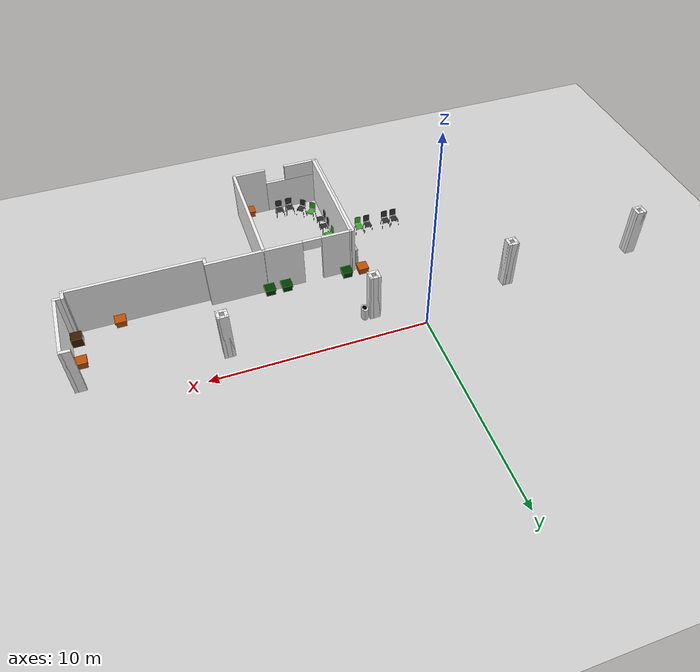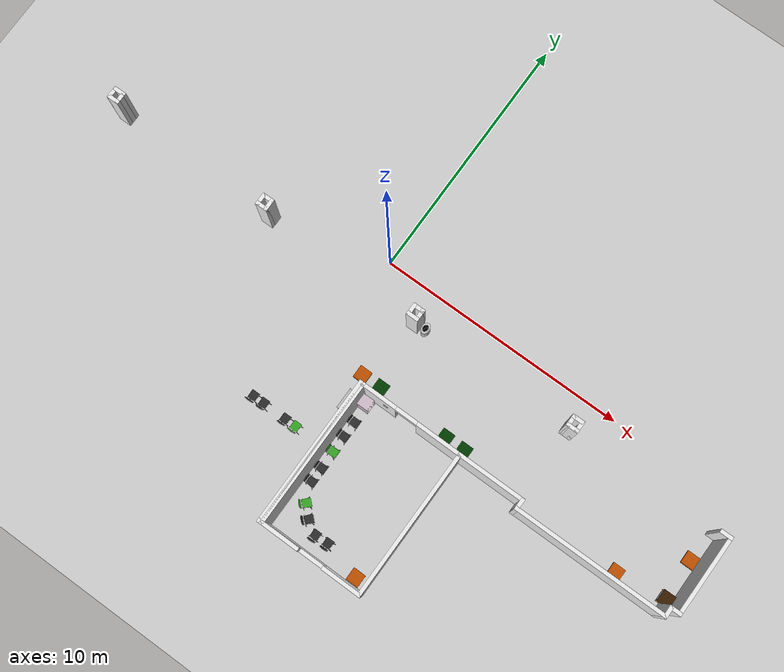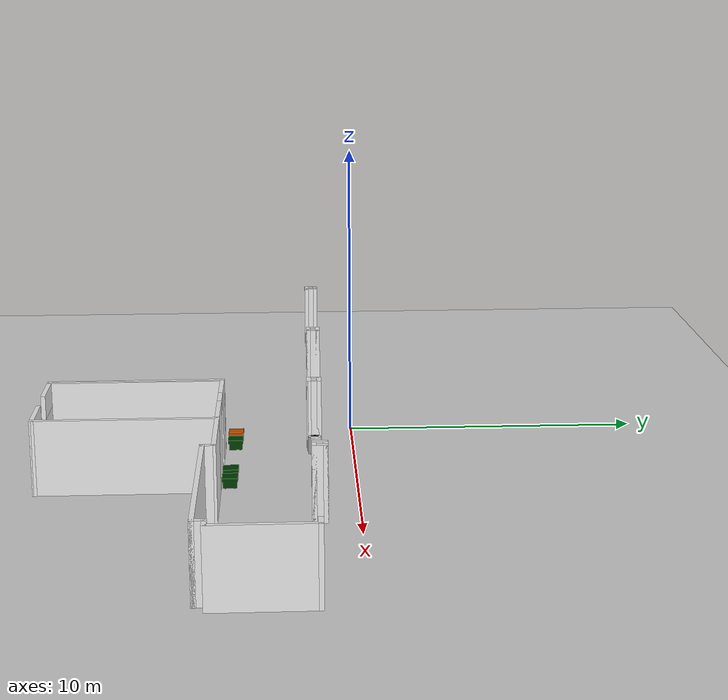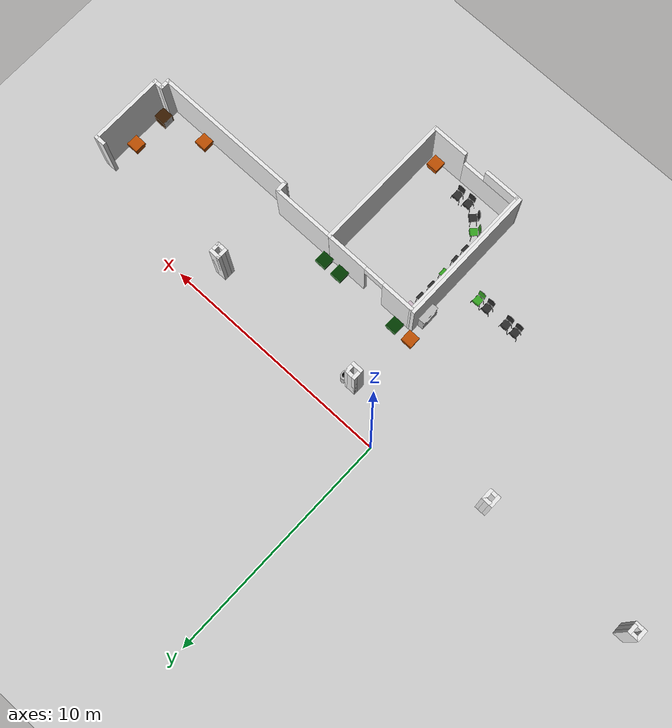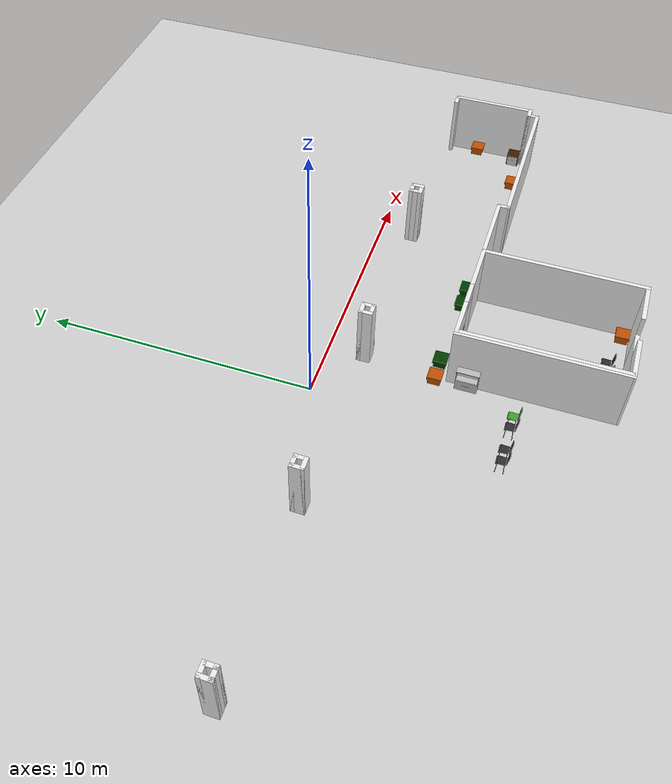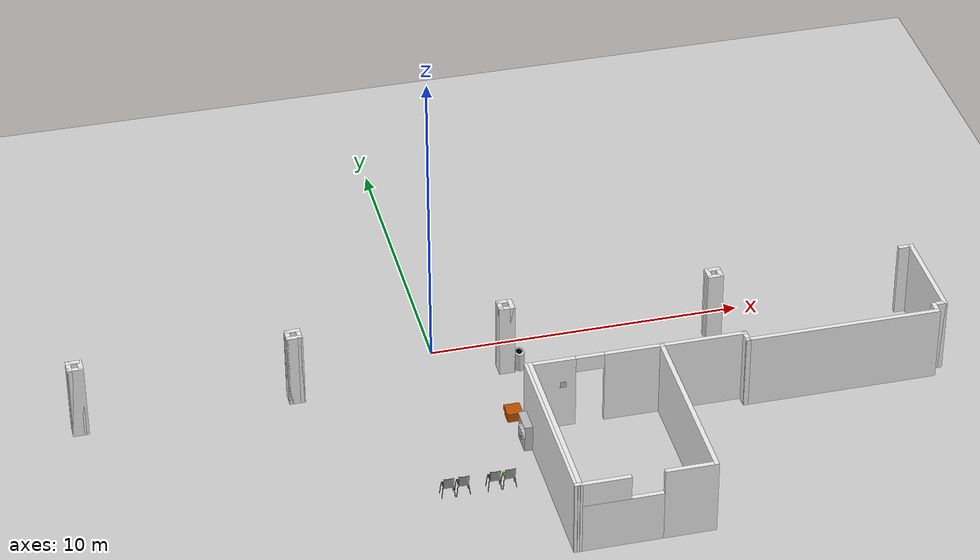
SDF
<sdf version="1.6">
 <world name="default">
  <model name="ground_plane">
   <static>1</static>
   <link name="link">
    <collision name="collision">
     <geometry><plane><normal>0 0 1</normal><size>100 100</size></plane></geometry>
     <surface><friction><ode><mu>100</mu><mu2>50</mu2></ode></friction></surface>
    </collision>
    <visual name="visual">
     <cast_shadows>0</cast_shadows>
     <geometry><plane><normal>0 0 1</normal><size>100 100</size></plane></geometry>
     <material>
      <script><uri>file://media/materials/scripts/gazebo.material</uri><name>Gazebo/Grey</name></script>
     </material>
    </visual>
   </link>
  </model>
  <model name="columns">
   <pose>-1.23086 -1.27462 0 0 -0 0</pose>
   <link name="Wall_337">
    <collision name="Wall_337_Collision">
     <geometry><box><size>0.5 0.15 2.5</size></box></geometry>
     <pose>0 0 1.25 0 -0 0</pose>
    </collision>
    <visual name="Wall_337_Visual">
     <pose>0 0 1.25 0 -0 0</pose>
     <geometry><box><size>0.5 0.15 2.5</size></box></geometry>
     <material>
      <script><uri>file://media/materials/scripts/gazebo.material</uri><name>Gazebo/White</name></script>
      <ambient>1 1 1 1</ambient>
     </material>
     <meta><layer>0</layer></meta>
    </visual>
    <pose>9.87053 0.009422 0 0 0 -1.5708</pose>
   </link>
   <link name="Wall_338">
    <collision name="Wall_338_Collision">
     <geometry><box><size>0.5 0.15 2.5</size></box></geometry>
     <pose>0 0 1.25 0 -0 0</pose>
    </collision>
    <visual name="Wall_338_Visual">
     <pose>0 0 1.25 0 -0 0</pose>
     <geometry><box><size>0.5 0.15 2.5</size></box></geometry>
     <material>
      <script><uri>file://media/materials/scripts/gazebo.material</uri><name>Gazebo/White</name></script>
      <ambient>1 1 1 1</ambient>
     </material>
     <meta><layer>0</layer></meta>
    </visual>
    <pose>10.0455 -0.165578 0 0 -0 0</pose>
   </link>
   <link name="Wall_339">
    <collision name="Wall_339_Collision">
     <geometry><box><size>0.5 0.15 2.5</size></box></geometry>
     <pose>0 0 1.25 0 -0 0</pose>
    </collision>
    <visual name="Wall_339_Visual">
     <pose>0 0 1.25 0 -0 0</pose>
     <geometry><box><size>0.5 0.15 2.5</size></box></geometry>
     <material>
      <script><uri>file://media/materials/scripts/gazebo.material</uri><name>Gazebo/White</name></script>
      <ambient>1 1 1 1</ambient>
     </material>
     <meta><layer>0</layer></meta>
    </visual>
    <pose>10.2205 0.009422 0 0 -0 1.5708</pose>
   </link>
   <link name="Wall_340">
    <collision name="Wall_340_Collision">
     <geometry><box><size>0.5 0.15 2.5</size></box></geometry>
     <pose>0 0 1.25 0 -0 0</pose>
    </collision>
    <visual name="Wall_340_Visual">
     <pose>0 0 1.25 0 -0 0</pose>
     <geometry><box><size>0.5 0.15 2.5</size></box></geometry>
     <material>
      <script><uri>file://media/materials/scripts/gazebo.material</uri><name>Gazebo/White</name></script>
      <ambient>1 1 1 1</ambient>
     </material>
     <meta><layer>0</layer></meta>
    </visual>
    <pose>10.0455 0.184422 0 0 -0 3.14159</pose>
   </link>
   <link name="Wall_342">
    <collision name="Wall_342_Collision">
     <geometry><box><size>0.5 0.15 2.5</size></box></geometry>
     <pose>0 0 1.25 0 -0 0</pose>
    </collision>
    <visual name="Wall_342_Visual">
     <pose>0 0 1.25 0 -0 0</pose>
     <geometry><box><size>0.5 0.15 2.5</size></box></geometry>
     <material>
      <script><uri>file://media/materials/scripts/gazebo.material</uri><name>Gazebo/White</name></script>
      <ambient>1 1 1 1</ambient>
     </material>
     <meta><layer>0</layer></meta>
    </visual>
    <pose>3.13524 -0.056002 0 0 0 -1.5708</pose>
   </link>
   <link name="Wall_343">
    <collision name="Wall_343_Collision">
     <geometry><box><size>0.5 0.15 2.5</size></box></geometry>
     <pose>0 0 1.25 0 -0 0</pose>
    </collision>
    <visual name="Wall_343_Visual">
     <pose>0 0 1.25 0 -0 0</pose>
     <geometry><box><size>0.5 0.15 2.5</size></box></geometry>
     <material>
      <script><uri>file://media/materials/scripts/gazebo.material</uri><name>Gazebo/White</name></script>
      <ambient>1 1 1 1</ambient>
     </material>
     <meta><layer>0</layer></meta>
    </visual>
    <pose>3.31024 -0.231003 0 0 -0 0</pose>
   </link>
   <link name="Wall_344">
    <collision name="Wall_344_Collision">
     <geometry><box><size>0.5 0.15 2.5</size></box></geometry>
     <pose>0 0 1.25 0 -0 0</pose>
    </collision>
    <visual name="Wall_344_Visual">
     <pose>0 0 1.25 0 -0 0</pose>
     <geometry><box><size>0.5 0.15 2.5</size></box></geometry>
     <material>
      <script><uri>file://media/materials/scripts/gazebo.material</uri><name>Gazebo/White</name></script>
      <ambient>1 1 1 1</ambient>
     </material>
     <meta><layer>0</layer></meta>
    </visual>
    <pose>3.48524 -0.056002 0 0 -0 1.5708</pose>
   </link>
   <link name="Wall_345">
    <collision name="Wall_345_Collision">
     <geometry><box><size>0.5 0.15 2.5</size></box></geometry>
     <pose>0 0 1.25 0 -0 0</pose>
    </collision>
    <visual name="Wall_345_Visual">
     <pose>0 0 1.25 0 -0 0</pose>
     <geometry><box><size>0.5 0.15 2.5</size></box></geometry>
     <material>
      <script><uri>file://media/materials/scripts/gazebo.material</uri><name>Gazebo/White</name></script>
      <ambient>1 1 1 1</ambient>
     </material>
     <meta><layer>0</layer></meta>
    </visual>
    <pose>3.31024 0.118997 0 0 -0 3.14159</pose>
   </link>
   <link name="Wall_350">
    <collision name="Wall_350_Collision">
     <geometry><box><size>0.5 0.15 2.5</size></box></geometry>
     <pose>0 0 1.25 0 -0 0</pose>
    </collision>
    <visual name="Wall_350_Visual">
     <pose>0 0 1.25 0 -0 0</pose>
     <geometry><box><size>0.5 0.15 2.5</size></box></geometry>
     <material>
      <script><uri>file://media/materials/scripts/gazebo.material</uri><name>Gazebo/White</name></script>
      <ambient>1 1 1 1</ambient>
     </material>
     <meta><layer>0</layer></meta>
    </visual>
    <pose>-3.34038 0.200077 0 0 -0 0</pose>
   </link>
   <link name="Wall_351">
    <collision name="Wall_351_Collision">
     <geometry><box><size>0.5 0.15 2.5</size></box></geometry>
     <pose>0 0 1.25 0 -0 0</pose>
    </collision>
    <visual name="Wall_351_Visual">
     <pose>0 0 1.25 0 -0 0</pose>
     <geometry><box><size>0.5 0.15 2.5</size></box></geometry>
     <material>
      <script><uri>file://media/materials/scripts/gazebo.material</uri><name>Gazebo/White</name></script>
      <ambient>1 1 1 1</ambient>
     </material>
     <meta><layer>0</layer></meta>
    </visual>
    <pose>-3.16538 0.025078 0 0 0 -1.5708</pose>
   </link>
   <link name="Wall_352">
    <collision name="Wall_352_Collision">
     <geometry><box><size>0.5 0.15 2.5</size></box></geometry>
     <pose>0 0 1.25 0 -0 0</pose>
    </collision>
    <visual name="Wall_352_Visual">
     <pose>0 0 1.25 0 -0 0</pose>
     <geometry><box><size>0.5 0.15 2.5</size></box></geometry>
     <material>
      <script><uri>file://media/materials/scripts/gazebo.material</uri><name>Gazebo/White</name></script>
      <ambient>1 1 1 1</ambient>
     </material>
     <meta><layer>0</layer></meta>
    </visual>
    <pose>-3.34038 -0.149923 0 0 -0 3.14159</pose>
   </link>
   <link name="Wall_353">
    <collision name="Wall_353_Collision">
     <geometry><box><size>0.5 0.15 2.5</size></box></geometry>
     <pose>0 0 1.25 0 -0 0</pose>
    </collision>
    <visual name="Wall_353_Visual">
     <pose>0 0 1.25 0 -0 0</pose>
     <geometry><box><size>0.5 0.15 2.5</size></box></geometry>
     <material>
      <script><uri>file://media/materials/scripts/gazebo.material</uri><name>Gazebo/White</name></script>
      <ambient>1 1 1 1</ambient>
     </material>
     <meta><layer>0</layer></meta>
    </visual>
    <pose>-3.51538 0.025078 0 0 -0 1.5708</pose>
   </link>
   <link name="Wall_355">
    <collision name="Wall_355_Collision">
     <geometry><box><size>0.5 0.15 2.5</size></box></geometry>
     <pose>0 0 1.25 0 -0 0</pose>
    </collision>
    <visual name="Wall_355_Visual">
     <pose>0 0 1.25 0 -0 0</pose>
     <geometry><box><size>0.5 0.15 2.5</size></box></geometry>
     <material>
      <script><uri>file://media/materials/scripts/gazebo.material</uri><name>Gazebo/White</name></script>
      <ambient>1 1 1 1</ambient>
     </material>
     <meta><layer>0</layer></meta>
    </visual>
    <pose>-10.2205 0.056002 0 0 0 -1.5708</pose>
   </link>
   <link name="Wall_356">
    <collision name="Wall_356_Collision">
     <geometry><box><size>0.5 0.15 2.5</size></box></geometry>
     <pose>0 0 1.25 0 -0 0</pose>
    </collision>
    <visual name="Wall_356_Visual">
     <pose>0 0 1.25 0 -0 0</pose>
     <geometry><box><size>0.5 0.15 2.5</size></box></geometry>
     <material>
      <script><uri>file://media/materials/scripts/gazebo.material</uri><name>Gazebo/White</name></script>
      <ambient>1 1 1 1</ambient>
     </material>
     <meta><layer>0</layer></meta>
    </visual>
    <pose>-10.0455 -0.118998 0 0 -0 0</pose>
   </link>
   <link name="Wall_357">
    <collision name="Wall_357_Collision">
     <geometry><box><size>0.5 0.15 2.5</size></box></geometry>
     <pose>0 0 1.25 0 -0 0</pose>
    </collision>
    <visual name="Wall_357_Visual">
     <pose>0 0 1.25 0 -0 0</pose>
     <geometry><box><size>0.5 0.15 2.5</size></box></geometry>
     <material>
      <script><uri>file://media/materials/scripts/gazebo.material</uri><name>Gazebo/White</name></script>
      <ambient>1 1 1 1</ambient>
     </material>
     <meta><layer>0</layer></meta>
    </visual>
    <pose>-9.87053 0.056002 0 0 -0 1.5708</pose>
   </link>
   <link name="Wall_358">
    <collision name="Wall_358_Collision">
     <geometry><box><size>0.5 0.15 2.5</size></box></geometry>
     <pose>0 0 1.25 0 -0 0</pose>
    </collision>
    <visual name="Wall_358_Visual">
     <pose>0 0 1.25 0 -0 0</pose>
     <geometry><box><size>0.5 0.15 2.5</size></box></geometry>
     <material>
      <script><uri>file://media/materials/scripts/gazebo.material</uri><name>Gazebo/White</name></script>
      <ambient>1 1 1 1</ambient>
     </material>
     <meta><layer>0</layer></meta>
    </visual>
    <pose>-10.0455 0.231003 0 0 -0 3.14159</pose>
   </link>
   <static>1</static>
  </model>
  <model name="ucu_basic_frame.world">
   <link name="Wall_171">
    <pose>5.44548 -11.0107 0 0 -0 1.5685</pose>
    <visual name="Wall_171_Visual">
     <pose>0 0 1.25 0 -0 0</pose>
     <geometry><box><size>5.97284 0.15 2.5</size></box></geometry>
     <material>
      <script><uri>file://media/materials/scripts/gazebo.material</uri><name>Gazebo/White</name></script>
      <ambient>1 1 1 1</ambient>
      <diffuse>1 1 1 1</diffuse>
      <specular>0 0 0 1</specular>
      <emissive>0 0 0 1</emissive>
     </material>
     <meta><layer>0</layer></meta>
    </visual>
    <collision name="Wall_171_Collision">
     <pose>0 0 1.25 0 -0 0</pose>
     <geometry><box><size>5.97284 0.15 2.5</size></box></geometry>
     <surface>
      <friction>
       <ode><mu>1</mu><mu2>1</mu2><fdir1>0 0 0</fdir1><slip1>0</slip1><slip2>0</slip2></ode>
       <torsional>
        <coefficient>1</coefficient>
        <patch_radius>0</patch_radius>
        <surface_radius>0</surface_radius>
        <use_patch_radius>1</use_patch_radius>
        <ode><slip>0</slip></ode>
       </torsional>
      </friction>
      <bounce><restitution_coefficient>0</restitution_coefficient><threshold>1e+06</threshold></bounce>
      <contact>
       <collide_without_contact>0</collide_without_contact>
       <collide_without_contact_bitmask>1</collide_without_contact_bitmask>
       <collide_bitmask>1</collide_bitmask>
       <ode>
        <soft_cfm>0</soft_cfm>
        <soft_erp>0.2</soft_erp>
        <kp>1e+13</kp>
        <kd>1</kd>
        <max_vel>0.01</max_vel>
        <min_depth>0</min_depth>
       </ode>
       <bullet>
        <split_impulse>1</split_impulse>
        <split_impulse_penetration_threshold>-0.01</split_impulse_penetration_threshold>
        <soft_cfm>0</soft_cfm>
        <soft_erp>0.2</soft_erp>
        <kp>1e+13</kp>
        <kd>1</kd>
       </bullet>
      </contact>
     </surface>
    </collision>
   </link>
   <link name="Wall_172">
    <pose>6.76546 -8.09988 0 0 0 -0.000444</pose>
    <visual name="Wall_172_Visual">
     <pose>0 0 1.25 0 -0 0</pose>
     <geometry><box><size>2.77695 0.15 2.5</size></box></geometry>
     <material>
      <script><uri>file://media/materials/scripts/gazebo.material</uri><name>Gazebo/White</name></script>
      <ambient>1 1 1 1</ambient>
      <diffuse>1 1 1 1</diffuse>
      <specular>0 0 0 1</specular>
      <emissive>0 0 0 1</emissive>
     </material>
     <meta><layer>0</layer></meta>
    </visual>
    <collision name="Wall_172_Collision">
     <pose>0 0 1.25 0 -0 0</pose>
     <geometry><box><size>2.77695 0.15 2.5</size></box></geometry>
     <surface>
      <friction>
       <ode><mu>1</mu><mu2>1</mu2><fdir1>0 0 0</fdir1><slip1>0</slip1><slip2>0</slip2></ode>
       <torsional>
        <coefficient>1</coefficient>
        <patch_radius>0</patch_radius>
        <surface_radius>0</surface_radius>
        <use_patch_radius>1</use_patch_radius>
        <ode><slip>0</slip></ode>
       </torsional>
      </friction>
      <bounce><restitution_coefficient>0</restitution_coefficient><threshold>1e+06</threshold></bounce>
      <contact>
       <collide_without_contact>0</collide_without_contact>
       <collide_without_contact_bitmask>1</collide_without_contact_bitmask>
       <collide_bitmask>1</collide_bitmask>
       <ode>
        <soft_cfm>0</soft_cfm>
        <soft_erp>0.2</soft_erp>
        <kp>1e+13</kp>
        <kd>1</kd>
        <max_vel>0.01</max_vel>
        <min_depth>0</min_depth>
       </ode>
       <bullet>
        <split_impulse>1</split_impulse>
        <split_impulse_penetration_threshold>-0.01</split_impulse_penetration_threshold>
        <soft_cfm>0</soft_cfm>
        <soft_erp>0.2</soft_erp>
        <kp>1e+13</kp>
        <kd>1</kd>
       </bullet>
      </contact>
     </surface>
    </collision>
   </link>
   <link name="Wall_175">
    <pose>8.08184 -8.28385 0 0 0 -1.55318</pose>
    <visual name="Wall_175_Visual">
     <pose>0 0 1.25 0 -0 0</pose>
     <geometry><box><size>0.5 0.15 2.5</size></box></geometry>
     <material>
      <script><uri>file://media/materials/scripts/gazebo.material</uri><name>Gazebo/White</name></script>
      <ambient>1 1 1 1</ambient>
      <diffuse>1 1 1 1</diffuse>
      <specular>0 0 0 1</specular>
      <emissive>0 0 0 1</emissive>
     </material>
     <meta><layer>0</layer></meta>
    </visual>
    <collision name="Wall_175_Collision">
     <pose>0 0 1.25 0 -0 0</pose>
     <geometry><box><size>0.5 0.15 2.5</size></box></geometry>
     <surface>
      <friction>
       <ode><mu>1</mu><mu2>1</mu2><fdir1>0 0 0</fdir1><slip1>0</slip1><slip2>0</slip2></ode>
       <torsional>
        <coefficient>1</coefficient>
        <patch_radius>0</patch_radius>
        <surface_radius>0</surface_radius>
        <use_patch_radius>1</use_patch_radius>
        <ode><slip>0</slip></ode>
       </torsional>
      </friction>
      <bounce><restitution_coefficient>0</restitution_coefficient><threshold>1e+06</threshold></bounce>
      <contact>
       <collide_without_contact>0</collide_without_contact>
       <collide_without_contact_bitmask>1</collide_without_contact_bitmask>
       <collide_bitmask>1</collide_bitmask>
       <ode>
        <soft_cfm>0</soft_cfm>
        <soft_erp>0.2</soft_erp>
        <kp>1e+13</kp>
        <kd>1</kd>
        <max_vel>0.01</max_vel>
        <min_depth>0</min_depth>
       </ode>
       <bullet>
        <split_impulse>1</split_impulse>
        <split_impulse_penetration_threshold>-0.01</split_impulse_penetration_threshold>
        <soft_cfm>0</soft_cfm>
        <soft_erp>0.2</soft_erp>
        <kp>1e+13</kp>
        <kd>1</kd>
       </bullet>
      </contact>
     </surface>
    </collision>
   </link>
   <link name="Wall_181">
    <pose>3.39042 -8.08948 0 0 -0 3.13683</pose>
    <visual name="Wall_181_Visual_0">
     <pose>-1.19379 0 1.25 0 -0 0</pose>
     <geometry><box><size>1.8861 0.15 2.5</size></box></geometry>
     <material>
      <script><uri>file://media/materials/scripts/gazebo.material</uri><name>Gazebo/White</name></script>
      <ambient>1 1 1 1</ambient>
      <diffuse>1 1 1 1</diffuse>
      <specular>0 0 0 1</specular>
      <emissive>0 0 0 1</emissive>
     </material>
     <meta><layer>0</layer></meta>
    </visual>
    <visual name="Wall_181_Visual_1">
     <pose>1.39305 0 1.25 0 -0 0</pose>
     <geometry><box><size>1.48758 0.15 2.5</size></box></geometry>
     <material>
      <script><uri>file://media/materials/scripts/gazebo.material</uri><name>Gazebo/White</name></script>
      <ambient>1 1 1 1</ambient>
      <diffuse>1 1 1 1</diffuse>
      <specular>0 0 0 1</specular>
      <emissive>0 0 0 1</emissive>
     </material>
     <meta><layer>0</layer></meta>
    </visual>
    <visual name="Wall_181_Visual_2">
     <pose>0.19926 0 2.25 0 -0 0</pose>
     <geometry><box><size>0.9 0.15 0.5</size></box></geometry>
     <material>
      <script><uri>file://media/materials/scripts/gazebo.material</uri><name>Gazebo/White</name></script>
      <ambient>1 1 1 1</ambient>
      <diffuse>1 1 1 1</diffuse>
      <specular>0 0 0 1</specular>
      <emissive>0 0 0 1</emissive>
     </material>
     <meta><layer>0</layer></meta>
    </visual>
    <collision name="Wall_181_Collision_0">
     <pose>-1.19379 0 1.25 0 -0 0</pose>
     <geometry><box><size>1.8861 0.15 2.5</size></box></geometry>
     <surface>
      <friction>
       <ode><mu>1</mu><mu2>1</mu2><fdir1>0 0 0</fdir1><slip1>0</slip1><slip2>0</slip2></ode>
       <torsional>
        <coefficient>1</coefficient>
        <patch_radius>0</patch_radius>
        <surface_radius>0</surface_radius>
        <use_patch_radius>1</use_patch_radius>
        <ode><slip>0</slip></ode>
       </torsional>
      </friction>
      <bounce><restitution_coefficient>0</restitution_coefficient><threshold>1e+06</threshold></bounce>
      <contact>
       <collide_without_contact>0</collide_without_contact>
       <collide_without_contact_bitmask>1</collide_without_contact_bitmask>
       <collide_bitmask>1</collide_bitmask>
       <ode>
        <soft_cfm>0</soft_cfm>
        <soft_erp>0.2</soft_erp>
        <kp>1e+13</kp>
        <kd>1</kd>
        <max_vel>0.01</max_vel>
        <min_depth>0</min_depth>
       </ode>
       <bullet>
        <split_impulse>1</split_impulse>
        <split_impulse_penetration_threshold>-0.01</split_impulse_penetration_threshold>
        <soft_cfm>0</soft_cfm>
        <soft_erp>0.2</soft_erp>
        <kp>1e+13</kp>
        <kd>1</kd>
       </bullet>
      </contact>
     </surface>
    </collision>
    <collision name="Wall_181_Collision_1">
     <pose>1.39305 0 1.25 0 -0 0</pose>
     <geometry><box><size>1.48758 0.15 2.5</size></box></geometry>
     <surface>
      <friction>
       <ode><mu>1</mu><mu2>1</mu2><fdir1>0 0 0</fdir1><slip1>0</slip1><slip2>0</slip2></ode>
       <torsional>
        <coefficient>1</coefficient>
        <patch_radius>0</patch_radius>
        <surface_radius>0</surface_radius>
        <use_patch_radius>1</use_patch_radius>
        <ode><slip>0</slip></ode>
       </torsional>
      </friction>
      <bounce><restitution_coefficient>0</restitution_coefficient><threshold>1e+06</threshold></bounce>
      <contact>
       <collide_without_contact>0</collide_without_contact>
       <collide_without_contact_bitmask>1</collide_without_contact_bitmask>
       <collide_bitmask>1</collide_bitmask>
       <ode>
        <soft_cfm>0</soft_cfm>
        <soft_erp>0.2</soft_erp>
        <kp>1e+13</kp>
        <kd>1</kd>
        <max_vel>0.01</max_vel>
        <min_depth>0</min_depth>
       </ode>
       <bullet>
        <split_impulse>1</split_impulse>
        <split_impulse_penetration_threshold>-0.01</split_impulse_penetration_threshold>
        <soft_cfm>0</soft_cfm>
        <soft_erp>0.2</soft_erp>
        <kp>1e+13</kp>
        <kd>1</kd>
       </bullet>
      </contact>
     </surface>
    </collision>
    <collision name="Wall_181_Collision_2">
     <pose>0.19926 0 2.25 0 -0 0</pose>
     <geometry><box><size>0.9 0.15 0.5</size></box></geometry>
     <surface>
      <friction>
       <ode><mu>1</mu><mu2>1</mu2><fdir1>0 0 0</fdir1><slip1>0</slip1><slip2>0</slip2></ode>
       <torsional>
        <coefficient>1</coefficient>
        <patch_radius>0</patch_radius>
        <surface_radius>0</surface_radius>
        <use_patch_radius>1</use_patch_radius>
        <ode><slip>0</slip></ode>
       </torsional>
      </friction>
      <bounce><restitution_coefficient>0</restitution_coefficient><threshold>1e+06</threshold></bounce>
      <contact>
       <collide_without_contact>0</collide_without_contact>
       <collide_without_contact_bitmask>1</collide_without_contact_bitmask>
       <collide_bitmask>1</collide_bitmask>
       <ode>
        <soft_cfm>0</soft_cfm>
        <soft_erp>0.2</soft_erp>
        <kp>1e+13</kp>
        <kd>1</kd>
        <max_vel>0.01</max_vel>
        <min_depth>0</min_depth>
       </ode>
       <bullet>
        <split_impulse>1</split_impulse>
        <split_impulse_penetration_threshold>-0.01</split_impulse_penetration_threshold>
        <soft_cfm>0</soft_cfm>
        <soft_erp>0.2</soft_erp>
        <kp>1e+13</kp>
        <kd>1</kd>
       </bullet>
      </contact>
     </surface>
    </collision>
   </link>
   <link name="Wall_184">
    <pose>1.33252 -10.9956 0 0 0 -1.56948</pose>
    <visual name="Wall_184_Visual">
     <pose>0 0 1.25 0 -0 0</pose>
     <geometry><box><size>5.98199 0.15 2.5</size></box></geometry>
     <material>
      <script><uri>file://media/materials/scripts/gazebo.material</uri><name>Gazebo/White</name></script>
      <ambient>1 1 1 1</ambient>
      <diffuse>1 1 1 1</diffuse>
      <specular>0 0 0 1</specular>
      <emissive>0 0 0 1</emissive>
     </material>
     <meta><layer>0</layer></meta>
    </visual>
    <collision name="Wall_184_Collision">
     <pose>0 0 1.25 0 -0 0</pose>
     <geometry><box><size>5.98199 0.15 2.5</size></box></geometry>
     <surface>
      <friction>
       <ode><mu>1</mu><mu2>1</mu2><fdir1>0 0 0</fdir1><slip1>0</slip1><slip2>0</slip2></ode>
       <torsional>
        <coefficient>1</coefficient>
        <patch_radius>0</patch_radius>
        <surface_radius>0</surface_radius>
        <use_patch_radius>1</use_patch_radius>
        <ode><slip>0</slip></ode>
       </torsional>
      </friction>
      <bounce><restitution_coefficient>0</restitution_coefficient><threshold>1e+06</threshold></bounce>
      <contact>
       <collide_without_contact>0</collide_without_contact>
       <collide_without_contact_bitmask>1</collide_without_contact_bitmask>
       <collide_bitmask>1</collide_bitmask>
       <ode>
        <soft_cfm>0</soft_cfm>
        <soft_erp>0.2</soft_erp>
        <kp>1e+13</kp>
        <kd>1</kd>
        <max_vel>0.01</max_vel>
        <min_depth>0</min_depth>
       </ode>
       <bullet>
        <split_impulse>1</split_impulse>
        <split_impulse_penetration_threshold>-0.01</split_impulse_penetration_threshold>
        <soft_cfm>0</soft_cfm>
        <soft_erp>0.2</soft_erp>
        <kp>1e+13</kp>
        <kd>1</kd>
       </bullet>
      </contact>
     </surface>
    </collision>
   </link>
   <link name="Wall_185">
    <pose>1.28661 -13.9114 0 0 -0 3.13667</pose>
    <visual name="Wall_185_Visual">
     <pose>0 0 1.25 0 -0 0</pose>
     <geometry><box><size>0.249504 0.15 2.5</size></box></geometry>
     <material>
      <script><uri>file://media/materials/scripts/gazebo.material</uri><name>Gazebo/White</name></script>
      <ambient>1 1 1 1</ambient>
      <diffuse>1 1 1 1</diffuse>
      <specular>0 0 0 1</specular>
      <emissive>0 0 0 1</emissive>
     </material>
     <meta><layer>0</layer></meta>
    </visual>
    <collision name="Wall_185_Collision">
     <pose>0 0 1.25 0 -0 0</pose>
     <geometry><box><size>0.249504 0.15 2.5</size></box></geometry>
     <surface>
      <friction>
       <ode><mu>1</mu><mu2>1</mu2><fdir1>0 0 0</fdir1><slip1>0</slip1><slip2>0</slip2></ode>
       <torsional>
        <coefficient>1</coefficient>
        <patch_radius>0</patch_radius>
        <surface_radius>0</surface_radius>
        <use_patch_radius>1</use_patch_radius>
        <ode><slip>0</slip></ode>
       </torsional>
      </friction>
      <bounce><restitution_coefficient>0</restitution_coefficient><threshold>1e+06</threshold></bounce>
      <contact>
       <collide_without_contact>0</collide_without_contact>
       <collide_without_contact_bitmask>1</collide_without_contact_bitmask>
       <collide_bitmask>1</collide_bitmask>
       <ode>
        <soft_cfm>0</soft_cfm>
        <soft_erp>0.2</soft_erp>
        <kp>1e+13</kp>
        <kd>1</kd>
        <max_vel>0.01</max_vel>
        <min_depth>0</min_depth>
       </ode>
       <bullet>
        <split_impulse>1</split_impulse>
        <split_impulse_penetration_threshold>-0.01</split_impulse_penetration_threshold>
        <soft_cfm>0</soft_cfm>
        <soft_erp>0.2</soft_erp>
        <kp>1e+13</kp>
        <kd>1</kd>
       </bullet>
      </contact>
     </surface>
    </collision>
   </link>
   <link name="Wall_186">
    <pose>1.23028 -10.9951 0 0 -0 1.57305</pose>
    <visual name="Wall_186_Visual">
     <pose>0 0 1.25 0 -0 0</pose>
     <geometry><box><size>5.98236 0.15 2.5</size></box></geometry>
     <material>
      <script><uri>file://media/materials/scripts/gazebo.material</uri><name>Gazebo/White</name></script>
      <ambient>0 1 0 1</ambient>
      <diffuse>1 1 1 1</diffuse>
      <specular>0 0 0 1</specular>
      <emissive>0 0 0 1</emissive>
     </material>
     <meta><layer>0</layer></meta>
    </visual>
    <collision name="Wall_186_Collision">
     <pose>0 0 1.25 0 -0 0</pose>
     <geometry><box><size>5.98236 0.15 2.5</size></box></geometry>
     <surface>
      <friction>
       <ode><mu>1</mu><mu2>1</mu2><fdir1>0 0 0</fdir1><slip1>0</slip1><slip2>0</slip2></ode>
       <torsional>
        <coefficient>1</coefficient>
        <patch_radius>0</patch_radius>
        <surface_radius>0</surface_radius>
        <use_patch_radius>1</use_patch_radius>
        <ode><slip>0</slip></ode>
       </torsional>
      </friction>
      <bounce><restitution_coefficient>0</restitution_coefficient><threshold>1e+06</threshold></bounce>
      <contact>
       <collide_without_contact>0</collide_without_contact>
       <collide_without_contact_bitmask>1</collide_without_contact_bitmask>
       <collide_bitmask>1</collide_bitmask>
       <ode>
        <soft_cfm>0</soft_cfm>
        <soft_erp>0.2</soft_erp>
        <kp>1e+13</kp>
        <kd>1</kd>
        <max_vel>0.01</max_vel>
        <min_depth>0</min_depth>
       </ode>
       <bullet>
        <split_impulse>1</split_impulse>
        <split_impulse_penetration_threshold>-0.01</split_impulse_penetration_threshold>
        <soft_cfm>0</soft_cfm>
        <soft_erp>0.2</soft_erp>
        <kp>1e+13</kp>
        <kd>1</kd>
       </bullet>
      </contact>
     </surface>
    </collision>
   </link>
   <link name="Wall_191">
    <pose>3.38758 -13.9169 0 0 -0 3.13903</pose>
    <visual name="Wall_191_Visual_0">
     <pose>-1.31182 0 1.25 0 -0 0</pose>
     <geometry><box><size>1.62881 0.15 2.5</size></box></geometry>
     <material>
      <script><uri>file://media/materials/scripts/gazebo.material</uri><name>Gazebo/White</name></script>
      <ambient>1 1 1 1</ambient>
      <diffuse>1 1 1 1</diffuse>
      <specular>0 0 0 1</specular>
      <emissive>0 0 0 1</emissive>
     </material>
     <meta><layer>0</layer></meta>
    </visual>
    <visual name="Wall_191_Visual_1">
     <pose>0.814404 0 0.85 0 -0 0</pose>
     <geometry><box><size>2.62364 0.15 1.7</size></box></geometry>
     <material>
      <script><uri>file://media/materials/scripts/gazebo.material</uri><name>Gazebo/White</name></script>
      <ambient>1 1 1 1</ambient>
      <diffuse>1 1 1 1</diffuse>
      <specular>0 0 0 1</specular>
      <emissive>0 0 0 1</emissive>
     </material>
     <meta><layer>0</layer></meta>
    </visual>
    <visual name="Wall_191_Visual_2">
     <pose>1.3144 0 2.1 0 -0 0</pose>
     <geometry><box><size>1.62365 0.15 0.8</size></box></geometry>
     <material>
      <script><uri>file://media/materials/scripts/gazebo.material</uri><name>Gazebo/White</name></script>
      <ambient>1 1 1 1</ambient>
      <diffuse>1 1 1 1</diffuse>
      <specular>0 0 0 1</specular>
      <emissive>0 0 0 1</emissive>
     </material>
     <meta><layer>0</layer></meta>
    </visual>
    <collision name="Wall_191_Collision_1">
     <pose>0.814404 0 0.85 0 -0 0</pose>
     <geometry><box><size>2.62364 0.15 1.7</size></box></geometry>
     <surface>
      <friction>
       <ode><mu>1</mu><mu2>1</mu2><fdir1>0 0 0</fdir1><slip1>0</slip1><slip2>0</slip2></ode>
       <torsional>
        <coefficient>1</coefficient>
        <patch_radius>0</patch_radius>
        <surface_radius>0</surface_radius>
        <use_patch_radius>1</use_patch_radius>
        <ode><slip>0</slip></ode>
       </torsional>
      </friction>
      <bounce><restitution_coefficient>0</restitution_coefficient><threshold>1e+06</threshold></bounce>
      <contact>
       <collide_without_contact>0</collide_without_contact>
       <collide_without_contact_bitmask>1</collide_without_contact_bitmask>
       <collide_bitmask>1</collide_bitmask>
       <ode>
        <soft_cfm>0</soft_cfm>
        <soft_erp>0.2</soft_erp>
        <kp>1e+13</kp>
        <kd>1</kd>
        <max_vel>0.01</max_vel>
        <min_depth>0</min_depth>
       </ode>
       <bullet>
        <split_impulse>1</split_impulse>
        <split_impulse_penetration_threshold>-0.01</split_impulse_penetration_threshold>
        <soft_cfm>0</soft_cfm>
        <soft_erp>0.2</soft_erp>
        <kp>1e+13</kp>
        <kd>1</kd>
       </bullet>
      </contact>
     </surface>
    </collision>
    <collision name="Wall_191_Collision_0">
     <pose>-1.31182 0 1.25 0 -0 0</pose>
     <geometry><box><size>1.62881 0.15 2.5</size></box></geometry>
     <surface>
      <friction>
       <ode><mu>1</mu><mu2>1</mu2><fdir1>0 0 0</fdir1><slip1>0</slip1><slip2>0</slip2></ode>
       <torsional>
        <coefficient>1</coefficient>
        <patch_radius>0</patch_radius>
        <surface_radius>0</surface_radius>
        <use_patch_radius>1</use_patch_radius>
        <ode><slip>0</slip></ode>
       </torsional>
      </friction>
      <bounce><restitution_coefficient>0</restitution_coefficient><threshold>1e+06</threshold></bounce>
      <contact>
       <collide_without_contact>0</collide_without_contact>
       <collide_without_contact_bitmask>1</collide_without_contact_bitmask>
       <collide_bitmask>1</collide_bitmask>
       <ode>
        <soft_cfm>0</soft_cfm>
        <soft_erp>0.2</soft_erp>
        <kp>1e+13</kp>
        <kd>1</kd>
        <max_vel>0.01</max_vel>
        <min_depth>0</min_depth>
       </ode>
       <bullet>
        <split_impulse>1</split_impulse>
        <split_impulse_penetration_threshold>-0.01</split_impulse_penetration_threshold>
        <soft_cfm>0</soft_cfm>
        <soft_erp>0.2</soft_erp>
        <kp>1e+13</kp>
        <kd>1</kd>
       </bullet>
      </contact>
     </surface>
    </collision>
    <collision name="Wall_191_Collision_2">
     <pose>1.3144 0 2.1 0 -0 0</pose>
     <geometry><box><size>1.62365 0.15 0.8</size></box></geometry>
     <surface>
      <friction>
       <ode><mu>1</mu><mu2>1</mu2><fdir1>0 0 0</fdir1><slip1>0</slip1><slip2>0</slip2></ode>
       <torsional>
        <coefficient>1</coefficient>
        <patch_radius>0</patch_radius>
        <surface_radius>0</surface_radius>
        <use_patch_radius>1</use_patch_radius>
        <ode><slip>0</slip></ode>
       </torsional>
      </friction>
      <bounce><restitution_coefficient>0</restitution_coefficient><threshold>1e+06</threshold></bounce>
      <contact>
       <collide_without_contact>0</collide_without_contact>
       <collide_without_contact_bitmask>1</collide_without_contact_bitmask>
       <collide_bitmask>1</collide_bitmask>
       <ode>
        <soft_cfm>0</soft_cfm>
        <soft_erp>0.2</soft_erp>
        <kp>1e+13</kp>
        <kd>1</kd>
        <max_vel>0.01</max_vel>
        <min_depth>0</min_depth>
       </ode>
       <bullet>
        <split_impulse>1</split_impulse>
        <split_impulse_penetration_threshold>-0.01</split_impulse_penetration_threshold>
        <soft_cfm>0</soft_cfm>
        <soft_erp>0.2</soft_erp>
        <kp>1e+13</kp>
        <kd>1</kd>
       </bullet>
      </contact>
     </surface>
    </collision>
   </link>
   <link name="Wall_276">
    <pose>11.1349 -8.45041 0 0 -0 0</pose>
    <visual name="Wall_276_Visual">
     <pose>0 0 1.25 0 -0 0</pose>
     <geometry><box><size>6.25 0.15 2.5</size></box></geometry>
     <material>
      <script><uri>file://media/materials/scripts/gazebo.material</uri><name>Gazebo/White</name></script>
      <ambient>1 1 1 1</ambient>
      <diffuse>1 1 1 1</diffuse>
      <specular>0 0 0 1</specular>
      <emissive>0 0 0 1</emissive>
     </material>
     <meta><layer>0</layer></meta>
    </visual>
    <collision name="Wall_276_Collision">
     <pose>0 0 1.25 0 -0 0</pose>
     <geometry><box><size>6.25 0.15 2.5</size></box></geometry>
     <surface>
      <friction>
       <ode><mu>1</mu><mu2>1</mu2><fdir1>0 0 0</fdir1><slip1>0</slip1><slip2>0</slip2></ode>
       <torsional>
        <coefficient>1</coefficient>
        <patch_radius>0</patch_radius>
        <surface_radius>0</surface_radius>
        <use_patch_radius>1</use_patch_radius>
        <ode><slip>0</slip></ode>
       </torsional>
      </friction>
      <bounce><restitution_coefficient>0</restitution_coefficient><threshold>1e+06</threshold></bounce>
      <contact>
       <collide_without_contact>0</collide_without_contact>
       <collide_without_contact_bitmask>1</collide_without_contact_bitmask>
       <collide_bitmask>1</collide_bitmask>
       <ode>
        <soft_cfm>0</soft_cfm>
        <soft_erp>0.2</soft_erp>
        <kp>1e+13</kp>
        <kd>1</kd>
        <max_vel>0.01</max_vel>
        <min_depth>0</min_depth>
       </ode>
       <bullet>
        <split_impulse>1</split_impulse>
        <split_impulse_penetration_threshold>-0.01</split_impulse_penetration_threshold>
        <soft_cfm>0</soft_cfm>
        <soft_erp>0.2</soft_erp>
        <kp>1e+13</kp>
        <kd>1</kd>
       </bullet>
      </contact>
     </surface>
    </collision>
   </link>
   <link name="Wall_293">
    <pose>14.1849 -8.27541 0 0 -0 1.5708</pose>
    <visual name="Wall_293_Visual">
     <pose>0 0 1.25 0 -0 0</pose>
     <geometry><box><size>0.5 0.15 2.5</size></box></geometry>
     <material>
      <script><uri>file://media/materials/scripts/gazebo.material</uri><name>Gazebo/White</name></script>
      <ambient>1 1 1 1</ambient>
      <diffuse>1 1 1 1</diffuse>
      <specular>0 0 0 1</specular>
      <emissive>0 0 0 1</emissive>
     </material>
     <meta><layer>0</layer></meta>
    </visual>
    <collision name="Wall_293_Collision">
     <pose>0 0 1.25 0 -0 0</pose>
     <geometry><box><size>0.5 0.15 2.5</size></box></geometry>
     <surface>
      <friction>
       <ode><mu>1</mu><mu2>1</mu2><fdir1>0 0 0</fdir1><slip1>0</slip1><slip2>0</slip2></ode>
       <torsional>
        <coefficient>1</coefficient>
        <patch_radius>0</patch_radius>
        <surface_radius>0</surface_radius>
        <use_patch_radius>1</use_patch_radius>
        <ode><slip>0</slip></ode>
       </torsional>
      </friction>
      <bounce><restitution_coefficient>0</restitution_coefficient><threshold>1e+06</threshold></bounce>
      <contact>
       <collide_without_contact>0</collide_without_contact>
       <collide_without_contact_bitmask>1</collide_without_contact_bitmask>
       <collide_bitmask>1</collide_bitmask>
       <ode>
        <soft_cfm>0</soft_cfm>
        <soft_erp>0.2</soft_erp>
        <kp>1e+13</kp>
        <kd>1</kd>
        <max_vel>0.01</max_vel>
        <min_depth>0</min_depth>
       </ode>
       <bullet>
        <split_impulse>1</split_impulse>
        <split_impulse_penetration_threshold>-0.01</split_impulse_penetration_threshold>
        <soft_cfm>0</soft_cfm>
        <soft_erp>0.2</soft_erp>
        <kp>1e+13</kp>
        <kd>1</kd>
       </bullet>
      </contact>
     </surface>
    </collision>
   </link>
   <link name="Wall_294">
    <pose>14.3599 -8.10041 0 0 -0 0</pose>
    <visual name="Wall_294_Visual">
     <pose>0 0 1.25 0 -0 0</pose>
     <geometry><box><size>0.5 0.15 2.5</size></box></geometry>
     <material>
      <script><uri>file://media/materials/scripts/gazebo.material</uri><name>Gazebo/White</name></script>
      <ambient>1 1 1 1</ambient>
      <diffuse>1 1 1 1</diffuse>
      <specular>0 0 0 1</specular>
      <emissive>0 0 0 1</emissive>
     </material>
     <meta><layer>0</layer></meta>
    </visual>
    <collision name="Wall_294_Collision">
     <pose>0 0 1.25 0 -0 0</pose>
     <geometry><box><size>0.5 0.15 2.5</size></box></geometry>
     <surface>
      <friction>
       <ode><mu>1</mu><mu2>1</mu2><fdir1>0 0 0</fdir1><slip1>0</slip1><slip2>0</slip2></ode>
       <torsional>
        <coefficient>1</coefficient>
        <patch_radius>0</patch_radius>
        <surface_radius>0</surface_radius>
        <use_patch_radius>1</use_patch_radius>
        <ode><slip>0</slip></ode>
       </torsional>
      </friction>
      <bounce><restitution_coefficient>0</restitution_coefficient><threshold>1e+06</threshold></bounce>
      <contact>
       <collide_without_contact>0</collide_without_contact>
       <collide_without_contact_bitmask>1</collide_without_contact_bitmask>
       <collide_bitmask>1</collide_bitmask>
       <ode>
        <soft_cfm>0</soft_cfm>
        <soft_erp>0.2</soft_erp>
        <kp>1e+13</kp>
        <kd>1</kd>
        <max_vel>0.01</max_vel>
        <min_depth>0</min_depth>
       </ode>
       <bullet>
        <split_impulse>1</split_impulse>
        <split_impulse_penetration_threshold>-0.01</split_impulse_penetration_threshold>
        <soft_cfm>0</soft_cfm>
        <soft_erp>0.2</soft_erp>
        <kp>1e+13</kp>
        <kd>1</kd>
       </bullet>
      </contact>
     </surface>
    </collision>
   </link>
   <link name="Wall_296">
    <pose>14.5349 -6.55041 0 0 -0 1.5708</pose>
    <visual name="Wall_296_Visual">
     <pose>0 0 1.25 0 -0 0</pose>
     <geometry><box><size>3.25 0.15 2.5</size></box></geometry>
     <material>
      <script><uri>file://media/materials/scripts/gazebo.material</uri><name>Gazebo/White</name></script>
      <ambient>1 1 1 1</ambient>
      <diffuse>1 1 1 1</diffuse>
      <specular>0 0 0 1</specular>
      <emissive>0 0 0 1</emissive>
     </material>
     <meta><layer>0</layer></meta>
    </visual>
    <collision name="Wall_296_Collision">
     <pose>0 0 1.25 0 -0 0</pose>
     <geometry><box><size>3.25 0.15 2.5</size></box></geometry>
     <surface>
      <friction>
       <ode><mu>1</mu><mu2>1</mu2><fdir1>0 0 0</fdir1><slip1>0</slip1><slip2>0</slip2></ode>
       <torsional>
        <coefficient>1</coefficient>
        <patch_radius>0</patch_radius>
        <surface_radius>0</surface_radius>
        <use_patch_radius>1</use_patch_radius>
        <ode><slip>0</slip></ode>
       </torsional>
      </friction>
      <bounce><restitution_coefficient>0</restitution_coefficient><threshold>1e+06</threshold></bounce>
      <contact>
       <collide_without_contact>0</collide_without_contact>
       <collide_without_contact_bitmask>1</collide_without_contact_bitmask>
       <collide_bitmask>1</collide_bitmask>
       <ode>
        <soft_cfm>0</soft_cfm>
        <soft_erp>0.2</soft_erp>
        <kp>1e+13</kp>
        <kd>1</kd>
        <max_vel>0.01</max_vel>
        <min_depth>0</min_depth>
       </ode>
       <bullet>
        <split_impulse>1</split_impulse>
        <split_impulse_penetration_threshold>-0.01</split_impulse_penetration_threshold>
        <soft_cfm>0</soft_cfm>
        <soft_erp>0.2</soft_erp>
        <kp>1e+13</kp>
        <kd>1</kd>
       </bullet>
      </contact>
     </surface>
    </collision>
   </link>
   <link name="Wall_297">
    <pose>14.3599 -5.00041 0 0 -0 3.14159</pose>
    <visual name="Wall_297_Visual">
     <pose>0 0 1.25 0 -0 0</pose>
     <geometry><box><size>0.5 0.15 2.5</size></box></geometry>
     <material>
      <script><uri>file://media/materials/scripts/gazebo.material</uri><name>Gazebo/White</name></script>
      <ambient>1 1 1 1</ambient>
      <diffuse>1 1 1 1</diffuse>
      <specular>0 0 0 1</specular>
      <emissive>0 0 0 1</emissive>
     </material>
     <meta><layer>0</layer></meta>
    </visual>
    <collision name="Wall_297_Collision">
     <pose>0 0 1.25 0 -0 0</pose>
     <geometry><box><size>0.5 0.15 2.5</size></box></geometry>
     <surface>
      <friction>
       <ode><mu>1</mu><mu2>1</mu2><fdir1>0 0 0</fdir1><slip1>0</slip1><slip2>0</slip2></ode>
       <torsional>
        <coefficient>1</coefficient>
        <patch_radius>0</patch_radius>
        <surface_radius>0</surface_radius>
        <use_patch_radius>1</use_patch_radius>
        <ode><slip>0</slip></ode>
       </torsional>
      </friction>
      <bounce><restitution_coefficient>0</restitution_coefficient><threshold>1e+06</threshold></bounce>
      <contact>
       <collide_without_contact>0</collide_without_contact>
       <collide_without_contact_bitmask>1</collide_without_contact_bitmask>
       <collide_bitmask>1</collide_bitmask>
       <ode>
        <soft_cfm>0</soft_cfm>
        <soft_erp>0.2</soft_erp>
        <kp>1e+13</kp>
        <kd>1</kd>
        <max_vel>0.01</max_vel>
        <min_depth>0</min_depth>
       </ode>
       <bullet>
        <split_impulse>1</split_impulse>
        <split_impulse_penetration_threshold>-0.01</split_impulse_penetration_threshold>
        <soft_cfm>0</soft_cfm>
        <soft_erp>0.2</soft_erp>
        <kp>1e+13</kp>
        <kd>1</kd>
       </bullet>
      </contact>
     </surface>
    </collision>
   </link>
   <static>1</static>
   <pose>0.7577 3.6363 0 0 -0 0</pose>
  </model>
  <include>
   <uri>model://robert_gazebo/models/locker_008</uri>
   <name>locker_008</name>
   <pose>1.87 -5.11 0.45 0 0 -1.57</pose>
  </include>
  <include>
   <uri>model://robert_gazebo/models/dump</uri>
   <name>dump_1</name>
   <pose>2.52 -1.32 0.28 0 0 -1.57</pose>
  </include>
  <include>
   <uri>model://robert_gazebo/models/classroom_chair_green</uri>
   <name>classroom_chair_008_1_1_1</name>
   <pose>0.81 -6.94 0.445 0 0 3.14</pose>
  </include>
  <include>
   <uri>model://robert_gazebo/models/classroom_chair_grey</uri>
   <name>classroom_chair_008_1_1_2</name>
   <pose>0.35 -6.94 0.445 0 0 3.14</pose>
  </include>
  <include>
   <uri>model://robert_gazebo/models/classroom_chair_grey</uri>
   <name>classroom_chair_008_1_2_1</name>
   <pose>-0.61 -6.94 0.445 0 0 3.14</pose>
  </include>
  <include>
   <uri>model://robert_gazebo/models/classroom_chair_grey</uri>
   <name>classroom_chair_008_1_2_2</name>
   <pose>-1.07 -6.94 0.445 0 0 3.14</pose>
  </include>
  <include>
   <uri>model://robert_gazebo/models/classroom_chair_grey</uri>
   <name>classroom_chair_007_2</name>
   <pose>4.21922 -9.58492 0.445359 1.2e-05 0.00014 3.13988</pose>
  </include>
  <include>
   <uri>model://robert_gazebo/models/classroom_chair_grey</uri>
   <name>classroom_chair_007_3</name>
   <pose>3.68603 -9.60896 0.445359 1.2e-05 0.00014 3.13988</pose>
  </include>
  <include>
   <uri>model://robert_gazebo/models/classroom_chair_grey</uri>
   <name>classroom_chair_007_4</name>
   <pose>3.14472 -9.29359 0.445386 -8.6e-05 0.000111 2.39401</pose>
  </include>
  <include>
   <uri>model://robert_gazebo/models/classroom_chair_green</uri>
   <name>classroom_chair_007_5</name>
   <pose>2.73532 -8.88305 0.445386 -8.6e-05 0.000111 2.39401</pose>
  </include>
  <include>
   <uri>model://robert_gazebo/models/classroom_chair_grey</uri>
   <name>classroom_chair_007_6</name>
   <pose>2.43068 -8.14518 0.445194 -0.00014 1.3e-05 1.57295</pose>
  </include>
  <include>
   <uri>model://robert_gazebo/models/classroom_chair_grey</uri>
   <name>classroom_chair_007_7</name>
   <pose>2.43592 -7.55694 0.445197 -0.00014 1.3e-05 1.57295</pose>
  </include>
  <include>
   <uri>model://robert_gazebo/models/classroom_chair_green</uri>
   <name>classroom_chair_007_8</name>
   <pose>2.43449 -6.85124 0.445198 -0.00014 1.3e-05 1.57295</pose>
  </include>
  <include>
   <uri>model://robert_gazebo/models/classroom_chair_grey</uri>
   <name>classroom_chair_007_9</name>
   <pose>2.41251 -6.18546 0.44519 -0.00014 1.3e-05 1.57295</pose>
  </include>
  <include>
   <uri>model://robert_gazebo/models/classroom_chair_grey</uri>
   <name>classroom_chair_007_10</name>
   <pose>2.42566 -5.55567 0.445198 -0.00014 1.3e-05 1.57295</pose>
  </include>
  <include>
   <uri>model://robert_gazebo/models/soft_armchair/green</uri>
   <name>soft_armchair_green_4</name>
   <pose>6.2 -4.09 0.38 0 0 0</pose>
  </include>
  <include>
   <uri>model://robert_gazebo/models/soft_armchair/green</uri>
   <name>soft_armchair_green_5</name>
   <pose>5.4 -4.09 0.38 0 0 0</pose>
  </include>
  <include>
   <uri>model://robert_gazebo/models/soft_armchair/green</uri>
   <name>soft_armchair_green_6</name>
   <pose>2.47 -4.01 0.38 0 0 0</pose>
  </include>
  <include>
   <uri>model://robert_gazebo/models/soft_armchair/orange</uri>
   <name>soft_armchair_orange_2</name>
   <pose>14.88 -2.56 0.38 0 0 1.57</pose>
  </include>
  <include>
   <uri>model://robert_gazebo/models/soft_armchair/orange</uri>
   <name>soft_armchair_orange_3</name>
   <pose>12.99 -4.43 0.38 0 0 0</pose>
  </include>
  <include>
   <uri>model://robert_gazebo/models/soft_armchair/orange</uri>
   <name>soft_armchair_orange_4</name>
   <pose>5.71 -9.93 0.38 0 0 0</pose>
  </include>
  <include>
   <uri>model://robert_gazebo/models/soft_armchair/orange</uri>
   <name>soft_armchair_orange_5</name>
   <pose>1.67 -4.01 0.38 0 0 0</pose>
  </include>
  <include>
   <uri>model://robert_gazebo/models/fire_rescue</uri>
   <name>fire_rescue_box</name>
   <pose>15 -4.14 0 0 0 3.14</pose>
  </include>
  <include>
   <uri>model://robert_gazebo/models/bookcase</uri>
   <name>bookcase_007</name>
   <pose>2.41 -4.8 0 0 0 -1.57</pose>
  </include>
  <include>
   <uri>model://robert_gazebo/models/qr/007</uri>
   <name>qr_007</name>
   <pose>3.1 -4.54 1.6 0 0 0</pose>
  </include>
 </world>
</sdf>
